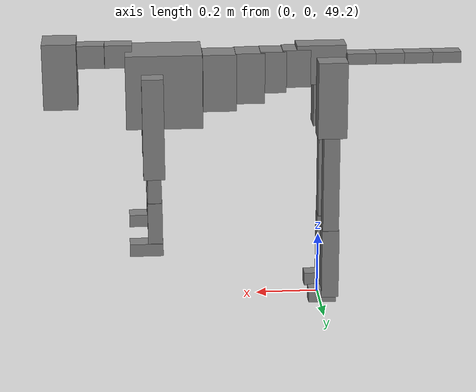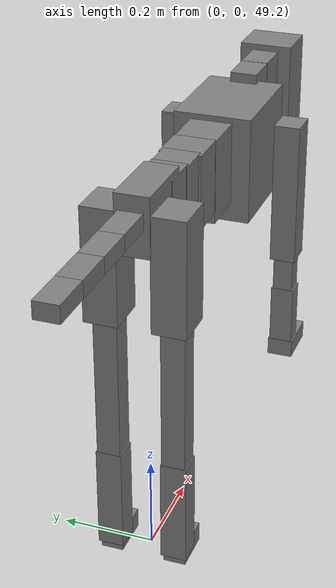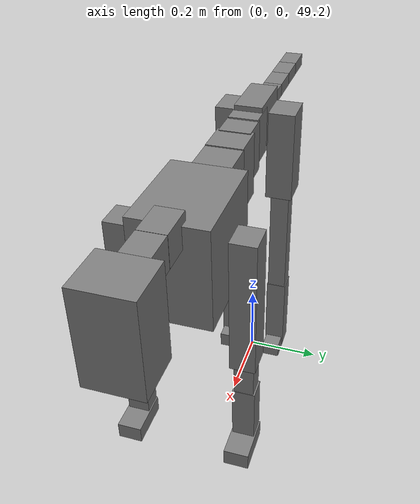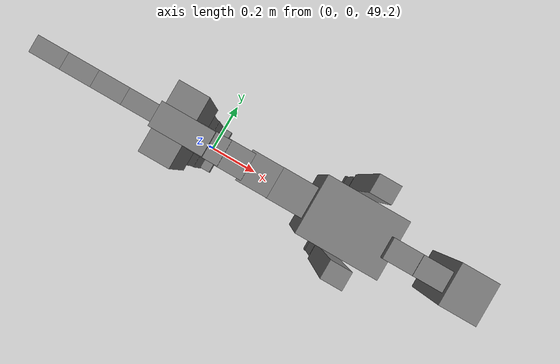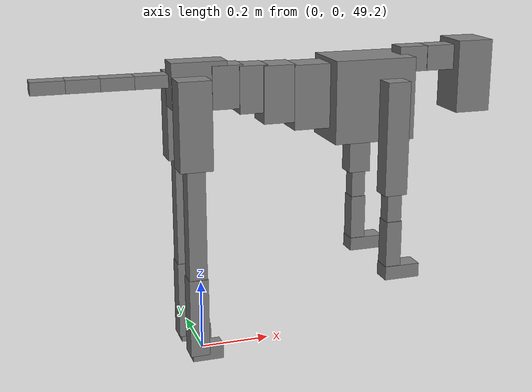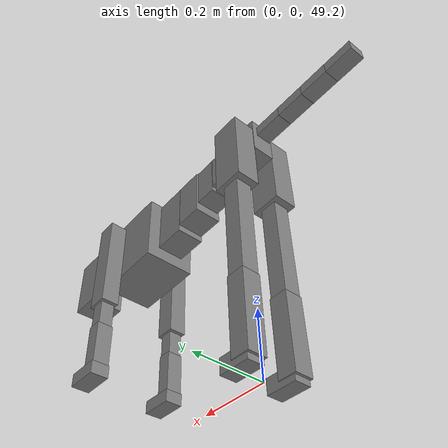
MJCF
<mujoco model="dog">

    <default>
        <joint armature="0.02" stiffness="1" damping="0.2" limited="true"/>
        <geom condim="3" friction="1 0.05 0.05" margin="0.01"/>
        <motor ctrllimited="true" ctrlrange="-1.0 1.0" forcelimited="true" gear="50"/>
    </default>

    <compiler inertiafromgeom="true" angle="radian"/>

    <option timestep="0.016" iterations="50" tolerance="1e-10" solver="Newton" jacobian="dense" cone="pyramidal"/>

    <size nconmax="20000" njmax="60000" nstack="5000000"/>
    <visual>
        <map force="0.1" zfar="30"/>
        <rgba haze="0.15 0.25 0.35 1"/>
        <quality shadowsize="2048"/>
        <global offwidth="800" offheight="800"/>
    </visual>

    <asset>
        <texture type="skybox" builtin="gradient" rgb1="0.3 0.5 0.7" rgb2="0 0 0" width="512" height="512"/>
        <texture name="texplane" type="2d" builtin="checker" rgb1=".2 .3 .4" rgb2=".1 0.15 0.2" width="512" height="512"
                 mark="cross" markrgb=".8 .8 .8"/>
        <texture name="texgeom" type="cube" builtin="flat" mark="cross" width="127" height="1278" rgb1="0.8 0.6 0.4"
                 rgb2="0.8 0.6 0.4" markrgb="1 1 1" random="0.01"/>

        <material name="matplane" reflectance="0.3" texture="texplane" texrepeat="1 1" texuniform="true"/>
        <material name="matgeom" texture="texgeom" texuniform="true" rgba="0.8 0.6 .4 1"/>
    </asset>

    <worldbody>
        <geom name="floor" pos="0 0 0" size="0 0 .25" type="plane" material="matplane" condim="3"/>

        <light directional="false" diffuse=".2 .2 .2" specular="0 0 0" pos="0 0 5" dir="0 0 -1" castshadow="false"/>
        <light mode="targetbodycom" target="torso" directional="false" diffuse=".8 .8 .8" specular="0.3 0.3 0.3"
               pos="0 0 4.0" dir="0 0 -1"/>

        <body name="root" pos="0 0 50">
            <freejoint name="root_1"/>
            <geom type="box" pos="0 0 -0.02" size="0.0774  0.0358  0.063" density="2030"/>

            <body name="spine1" pos="0.054 0 0">
                <joint name="spine1_y" axis="0 1 0" range="0 0.7" limited="true"/>
                <geom type="box" pos="0.02375 0 -0.03" size="0.04375  0.0375  0.05985" density="2030"/>

                <body name="spine2" pos="0.0612 0 0">
                    <joint name="spine2_y" axis="0 1 0" range="-0.15 0.15" limited="true"/>
                    <geom type="box" pos="0.03555  0  -0.04" size="0.04055  0.039  0.06615" density="2030"/>

                    <body name="spine3" pos="0.0730 0 0">
                        <joint name="spine3_y" axis="0 1 0" range="-0.15 0.15" limited="true"/>
                        <geom type="box" pos="0.03555  0  -0.057" size="0.04555  0.0445  0.081" density="2030"/>

                        <body name="spine4" pos="0.0780 0 0">
                            <joint name="spine4_y" axis="0 1 0" range="-0.15 0.15" limited="true"/>
                            <geom type="box" pos="0.05265  0  -0.07" size="0.05265  0.045  0.09135" density="2030"/>

                            <body name="torso" pos="0.1082 0 0">
                                <joint name="torso_y" axis="0 1 0" range="-0.15 0.15" limited="true"/>
                                <geom type="box" pos="0.11925  0  -0.085" size="0.11925  0.085  0.11745"
                                      density="2030"/>

                                <body name="neck1" pos="0.2160  0   0.0180">
                                    <joint name="neck1_y" axis="0 1 0" range="-1.2  -1" limited="true"/>
                                    <geom type="box" pos="0.0423  0  0" size="0.0423  0.03  0.036" density="2325"/>

                                    <body name="neck2" pos="0.0853  0  0">
                                        <joint name="neck2_y" axis="0 1 0" range="0.1  0" limited="true"/>
                                        <geom type="box" pos="0.0423  0  0" size="0.0423  0.03  0.036" density="2325"/>

                                        <body name="head" pos="0.0853  0  0">
                                            <joint name="head_y" axis="0 1 0" range="-0.3  -0.2" limited="true"/>
                                            <geom type="box" pos="0.0531  0  -0.055" size="0.0531  0.06  0.1044"
                                                  density="4030"/>

                                        </body>
                                    </body>
                                </body>

                                <body name="front_shoulder" pos="0.156  0   -0.0480">
                                    <joint name="front_shoulder_y" axis="0 1 0" range="-1 1.5" limited="true"/>
                                    <geom type="box" pos="0 0.13 -0.1347" size="0.0334  0.0285  0.1614" density="1158"/>
                                    <geom type="box" pos="0 -0.13 -0.1347" size="0.0334  0.0285  0.1614"
                                          density="1158"/>

                                    <body name="front_elbow" pos="0  0  -0.2695">
                                        <joint name="front_elbow_y" axis="0 1 0" range="-2 0" limited="true"/>
                                        <geom type="box" pos="0 0.13 -0.0593" size="0.0215  0.0220  0.0593"
                                              density="1081"/>
                                        <geom type="box" pos="0 -0.13 -0.0593" size="0.0215  0.0220  0.0593"
                                              density="1081"/>

                                        <body name="front_wrist" pos="0  0  -0.1186">
                                            <joint name="front_wrist_y" axis="0 1 0" range="-0.2 0" limited="true"/>
                                            <geom type="box" pos="0 0.13 -0.0677" size="0.0229  0.0255  0.0808"
                                                  density="1664"/>
                                            <geom type="box" pos="0 -0.13 -0.0677" size="0.0229  0.0255  0.0808"
                                                  density="1664"/>

                                            <body name="front_finger_end" pos="0  0  -0.1354">
                                                <joint name="front_finger_y" axis="0 1 0" range="-0.4 1"
                                                       limited="true"/>
                                                <geom type="box" pos="0.0284  0.13  -0.0052"
                                                      size="0.0522  0.0284  0.0202" density="1515"/>
                                                <geom type="box" pos="0.0284  -0.13  -0.0052"
                                                      size="0.0522  0.0284  0.0202" density="1515"/>

                                            </body>

                                        </body>
                                    </body>
                                </body>

                            </body>
                        </body>
                    </body>
                </body>
            </body>

            <body name="back_hip" pos="-0.03 0 -0.018">
                <joint name="back_hip_y" axis="0 1 0" range="-1.5 0.3" limited="true"/>
                <geom type="box" pos="0 0.07 -0.1000" size="0.0458  0.0359  0.1228" density="1154"/>
                <geom type="box" pos="0 -0.07 -0.1000" size="0.0458  0.0359  0.1228" density="1154"/>

                <body name="back_knee" pos="0  0  -0.2000">
                    <joint name="back_knee_y" axis="0 1 0" range="0 2.8" limited="true"/>
                    <geom type="box" pos="0 0.07 -0.1734" size="0.0255  0.0251  0.1889" density="1227"/>
                    <geom type="box" pos="0 -0.07 -0.1734" size="0.0255  0.0251  0.1889" density="1227"/>

                    <body name="back_ankle" pos="0  0  -0.3468">
                        <joint name="back_ankle_y" axis="0 1 0" range="-2.2 0" limited="true"/>
                        <geom type="box" pos="0 0.07 -0.1031" size="0.0274  0.0274  0.1143" density="1284"/>
                        <geom type="box" pos="0 -0.07 -0.1031" size="0.0274  0.0274  0.1143" density="1284"/>

                        <body name="back_toe_end" pos="0  0  -0.2061">
                            <joint name="back_toe_y" axis="0 1 0" range="-0.4 1" limited="true"/>
                            <geom type="box" pos="0.0240  0.07  -0.0069" size="0.0441  0.0240  0.0219" density="1515"/>
                            <geom type="box" pos="0.0240  -0.07  -0.0069" size="0.0441  0.0240  0.0219" density="1515"/>

                        </body>
                    </body>
                </body>
            </body>

            <body name="tail1" pos="-0.074 0 -0.006">
                <joint name="tail1_y" axis="0 1 0" range="-0.2 0.2" limited="true"/>
                <geom type="box" pos="-0.0536  0  0" size="0.045  0.025  0.0175" density="1587"/>

                <body name="tail2" pos="-0.09 0 0">
                    <joint name="tail2_y" axis="0 1 0" range="-0.2 0.2" limited="true"/>
                    <geom type="box" pos="-0.0536  0  0" size="0.045  0.025  0.0175" density="1587"/>

                    <body name="tail3" pos="-0.09 0 0">
                        <joint name="tail3_y" axis="0 1 0" range="-0.2 0.2" limited="true"/>
                        <geom type="box" pos="-0.0536  0  0" size="0.045  0.025  0.0175" density="1587"/>

                        <body name="tail4" pos="-0.09 0 0">
                            <joint name="tail4_y" axis="0 1 0" range="-0.2 0.2" limited="true"/>
                            <geom type="box" pos="-0.0536  0  0" size="0.045  0.025  0.0175" density="1587"/>

                        </body>
                    </body>
                </body>
            </body>
        </body>
    </worldbody>

    <actuator>
        <motor joint="spine1_y" forcerange="-150 150     "/>
        <motor joint="spine2_y" forcerange="-150 150     "/>
        <motor joint="spine3_y" forcerange="-150 150     "/>
        <motor joint="spine4_y" forcerange="-150 150     "/>
        <motor joint="torso_y" forcerange="-150 150     "/>
        <motor joint="neck1_y" forcerange="-100 100       "/>
        <motor joint="neck2_y" forcerange="-100 100       "/>
        <motor joint="head_y" forcerange="-150 150       "/>
        <motor joint="front_shoulder_y" forcerange="-119.04 171.01"/>
        <motor joint="front_elbow_y" forcerange="-133.84 126.21"/>
        <motor joint="front_wrist_y" forcerange="-77.01 126.65"/>
        <motor joint="front_finger_y" forcerange="-39.86 71.87"/>
        <motor joint="back_hip_y" forcerange="-301.42 377.20"/>
        <motor joint="back_knee_y" forcerange="-255.50 309.67"/>
        <motor joint="back_angle_y" forcerange="-106.71 232.05"/>
        <motor joint="back_toe_y" forcerange="-86.32 25.93"/>
        <motor joint="tail1_y" forcerange="-50 50     "/>
        <motor joint="tail2_y" forcerange="-50 50     "/>
        <motor joint="tail3_y" forcerange="-50 50     "/>
        <motor joint="tail4_y" forcerange="-50 50     "/>
    </actuator>
</mujoco>
